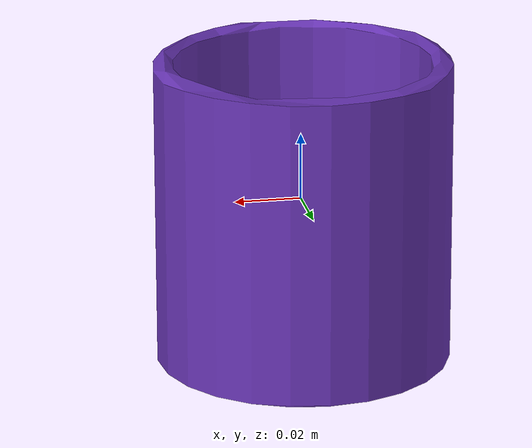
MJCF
<mujoco model="top_watertight_tiny">
  <default>
    <default group="2" type="mesh" contype="0" conaffinity="0">
      <geom group="2" type="mesh" contype="0" conaffinity="0"/>
    </default>
    <default group="3" type="mesh">
      <geom group="3" type="mesh"/>
    </default>
  </default>
  <asset>
    <mesh file="top_watertight_tiny.obj"/>
    <mesh file="top_watertight_tiny_collision_0.obj"/>
    <mesh file="top_watertight_tiny_collision_1.obj"/>
    <mesh file="top_watertight_tiny_collision_2.obj"/>
    <mesh file="top_watertight_tiny_collision_3.obj"/>
    <mesh file="top_watertight_tiny_collision_4.obj"/>
    <mesh file="top_watertight_tiny_collision_5.obj"/>
    <mesh file="top_watertight_tiny_collision_6.obj"/>
    <mesh file="top_watertight_tiny_collision_7.obj"/>
    <mesh file="top_watertight_tiny_collision_8.obj"/>
    <mesh file="top_watertight_tiny_collision_9.obj"/>
    <mesh file="top_watertight_tiny_collision_10.obj"/>
    <mesh file="top_watertight_tiny_collision_11.obj"/>
    <mesh file="top_watertight_tiny_collision_12.obj"/>
    <mesh file="top_watertight_tiny_collision_13.obj"/>
    <mesh file="top_watertight_tiny_collision_14.obj"/>
    <mesh file="top_watertight_tiny_collision_15.obj"/>
    <mesh file="top_watertight_tiny_collision_16.obj"/>
    <mesh file="top_watertight_tiny_collision_17.obj"/>
    <mesh file="top_watertight_tiny_collision_18.obj"/>
    <mesh file="top_watertight_tiny_collision_19.obj"/>
    <mesh file="top_watertight_tiny_collision_20.obj"/>
    <mesh file="top_watertight_tiny_collision_21.obj"/>
    <mesh file="top_watertight_tiny_collision_22.obj"/>
    <mesh file="top_watertight_tiny_collision_23.obj"/>
    <mesh file="top_watertight_tiny_collision_24.obj"/>
    <mesh file="top_watertight_tiny_collision_25.obj"/>
    <mesh file="top_watertight_tiny_collision_26.obj"/>
    <mesh file="top_watertight_tiny_collision_27.obj"/>
    <mesh file="top_watertight_tiny_collision_28.obj"/>
    <mesh file="top_watertight_tiny_collision_29.obj"/>
    <mesh file="top_watertight_tiny_collision_30.obj"/>
    <mesh file="top_watertight_tiny_collision_31.obj"/>
    <mesh file="top_watertight_tiny_collision_32.obj"/>
    <mesh file="top_watertight_tiny_collision_33.obj"/>
    <mesh file="top_watertight_tiny_collision_34.obj"/>
    <mesh file="top_watertight_tiny_collision_35.obj"/>
    <mesh file="top_watertight_tiny_collision_36.obj"/>
    <mesh file="top_watertight_tiny_collision_37.obj"/>
    <mesh file="top_watertight_tiny_collision_38.obj"/>
    <mesh file="top_watertight_tiny_collision_39.obj"/>
    <mesh file="top_watertight_tiny_collision_40.obj"/>
    <mesh file="top_watertight_tiny_collision_41.obj"/>
    <mesh file="top_watertight_tiny_collision_42.obj"/>
    <mesh file="top_watertight_tiny_collision_43.obj"/>
    <mesh file="top_watertight_tiny_collision_44.obj"/>
    <mesh file="top_watertight_tiny_collision_45.obj"/>
    <mesh file="top_watertight_tiny_collision_46.obj"/>
    <mesh file="top_watertight_tiny_collision_47.obj"/>
    <mesh file="top_watertight_tiny_collision_48.obj"/>
    <mesh file="top_watertight_tiny_collision_49.obj"/>
    <mesh file="top_watertight_tiny_collision_50.obj"/>
    <mesh file="top_watertight_tiny_collision_51.obj"/>
    <mesh file="top_watertight_tiny_collision_52.obj"/>
    <mesh file="top_watertight_tiny_collision_53.obj"/>
    <mesh file="top_watertight_tiny_collision_54.obj"/>
    <mesh file="top_watertight_tiny_collision_55.obj"/>
    <mesh file="top_watertight_tiny_collision_56.obj"/>
    <mesh file="top_watertight_tiny_collision_57.obj"/>
    <mesh file="top_watertight_tiny_collision_58.obj"/>
    <mesh file="top_watertight_tiny_collision_59.obj"/>
    <mesh file="top_watertight_tiny_collision_60.obj"/>
    <mesh file="top_watertight_tiny_collision_61.obj"/>
    <mesh file="top_watertight_tiny_collision_62.obj"/>
    <mesh file="top_watertight_tiny_collision_63.obj"/>
    <mesh file="top_watertight_tiny_collision_64.obj"/>
    <mesh file="top_watertight_tiny_collision_65.obj"/>
    <mesh file="top_watertight_tiny_collision_66.obj"/>
    <mesh file="top_watertight_tiny_collision_67.obj"/>
    <mesh file="top_watertight_tiny_collision_68.obj"/>
    <mesh file="top_watertight_tiny_collision_69.obj"/>
    <mesh file="top_watertight_tiny_collision_70.obj"/>
    <mesh file="top_watertight_tiny_collision_71.obj"/>
    <mesh file="top_watertight_tiny_collision_72.obj"/>
    <mesh file="top_watertight_tiny_collision_73.obj"/>
    <mesh file="top_watertight_tiny_collision_74.obj"/>
    <mesh file="top_watertight_tiny_collision_75.obj"/>
    <mesh file="top_watertight_tiny_collision_76.obj"/>
    <mesh file="top_watertight_tiny_collision_77.obj"/>
    <mesh file="top_watertight_tiny_collision_78.obj"/>
    <mesh file="top_watertight_tiny_collision_79.obj"/>
    <mesh file="top_watertight_tiny_collision_80.obj"/>
    <mesh file="top_watertight_tiny_collision_81.obj"/>
    <mesh file="top_watertight_tiny_collision_82.obj"/>
    <mesh file="top_watertight_tiny_collision_83.obj"/>
    <mesh file="top_watertight_tiny_collision_84.obj"/>
    <mesh file="top_watertight_tiny_collision_85.obj"/>
    <mesh file="top_watertight_tiny_collision_86.obj"/>
    <mesh file="top_watertight_tiny_collision_87.obj"/>
    <mesh file="top_watertight_tiny_collision_88.obj"/>
    <mesh file="top_watertight_tiny_collision_89.obj"/>
    <mesh file="top_watertight_tiny_collision_90.obj"/>
    <mesh file="top_watertight_tiny_collision_91.obj"/>
    <mesh file="top_watertight_tiny_collision_92.obj"/>
    <mesh file="top_watertight_tiny_collision_93.obj"/>
    <mesh file="top_watertight_tiny_collision_94.obj"/>
    <mesh file="top_watertight_tiny_collision_95.obj"/>
    <mesh file="top_watertight_tiny_collision_96.obj"/>
    <mesh file="top_watertight_tiny_collision_97.obj"/>
    <mesh file="top_watertight_tiny_collision_98.obj"/>
    <mesh file="top_watertight_tiny_collision_99.obj"/>
    <mesh file="top_watertight_tiny_collision_100.obj"/>
    <mesh file="top_watertight_tiny_collision_101.obj"/>
    <mesh file="top_watertight_tiny_collision_102.obj"/>
    <mesh file="top_watertight_tiny_collision_103.obj"/>
    <mesh file="top_watertight_tiny_collision_104.obj"/>
    <mesh file="top_watertight_tiny_collision_105.obj"/>
    <mesh file="top_watertight_tiny_collision_106.obj"/>
    <mesh file="top_watertight_tiny_collision_107.obj"/>
    <mesh file="top_watertight_tiny_collision_108.obj"/>
    <mesh file="top_watertight_tiny_collision_109.obj"/>
    <mesh file="top_watertight_tiny_collision_110.obj"/>
    <mesh file="top_watertight_tiny_collision_111.obj"/>
    <mesh file="top_watertight_tiny_collision_112.obj"/>
    <mesh file="top_watertight_tiny_collision_113.obj"/>
    <mesh file="top_watertight_tiny_collision_114.obj"/>
    <mesh file="top_watertight_tiny_collision_115.obj"/>
    <mesh file="top_watertight_tiny_collision_116.obj"/>
    <mesh file="top_watertight_tiny_collision_117.obj"/>
    <mesh file="top_watertight_tiny_collision_118.obj"/>
    <mesh file="top_watertight_tiny_collision_119.obj"/>
    <mesh file="top_watertight_tiny_collision_120.obj"/>
  </asset>
  <worldbody>
    <body name="top_watertight_tiny">
      <freejoint/>
      <geom mesh="top_watertight_tiny" group="2" type="mesh" rgba="0.4 0.2 0.7 1" contype="0" conaffinity="0"/>
      <geom mesh="top_watertight_tiny_collision_0" rgba="0.4490990782536012 0.24460262758673013 0.04683654662629022 1" group="3" type="mesh"/>
      <geom mesh="top_watertight_tiny_collision_1" rgba="0.5599859420718888 0.6758748700977271 0.15544428380469655 1" group="3" type="mesh"/>
      <geom mesh="top_watertight_tiny_collision_2" rgba="0.7129459273746039 0.8729791469214472 0.9545844155881272 1" group="3" type="mesh"/>
      <geom mesh="top_watertight_tiny_collision_3" rgba="0.5191764600563122 0.06441206134734545 0.3671252044231731 1" group="3" type="mesh"/>
      <geom mesh="top_watertight_tiny_collision_4" rgba="0.3210344879338999 0.9539204172810082 0.14422990224602406 1" group="3" type="mesh"/>
      <geom mesh="top_watertight_tiny_collision_5" rgba="0.636595780511611 0.3759725430192782 0.3667528424146236 1" group="3" type="mesh"/>
      <geom mesh="top_watertight_tiny_collision_6" rgba="0.579764912573478 0.30946283480273307 0.23745374567479627 1" group="3" type="mesh"/>
      <geom mesh="top_watertight_tiny_collision_7" rgba="0.6550287724335618 0.12070492325264248 0.334848336915737 1" group="3" type="mesh"/>
      <geom mesh="top_watertight_tiny_collision_8" rgba="0.26891021990147934 0.4005121731803195 0.06574317797935303 1" group="3" type="mesh"/>
      <geom mesh="top_watertight_tiny_collision_9" rgba="0.8159494767528606 0.5352462528523569 0.5605220658428819 1" group="3" type="mesh"/>
      <geom mesh="top_watertight_tiny_collision_10" rgba="0.15416919359273884 0.778661410907151 0.4433331478676038 1" group="3" type="mesh"/>
      <geom mesh="top_watertight_tiny_collision_11" rgba="0.1399896553701564 0.011560491662929051 0.7740132577912806 1" group="3" type="mesh"/>
      <geom mesh="top_watertight_tiny_collision_12" rgba="0.5302535206763827 0.006914939213301663 0.9175609128522053 1" group="3" type="mesh"/>
      <geom mesh="top_watertight_tiny_collision_13" rgba="0.1593885614360756 0.0891130767295818 0.8307501813741608 1" group="3" type="mesh"/>
      <geom mesh="top_watertight_tiny_collision_14" rgba="0.5527968024209661 0.6435770556732072 0.059678221220655914 1" group="3" type="mesh"/>
      <geom mesh="top_watertight_tiny_collision_15" rgba="0.1506074401326848 0.5684909109283289 0.6647840674102448 1" group="3" type="mesh"/>
      <geom mesh="top_watertight_tiny_collision_16" rgba="0.6051282563757727 0.9229306384439185 0.694318498568247 1" group="3" type="mesh"/>
      <geom mesh="top_watertight_tiny_collision_17" rgba="0.963984351803506 0.15232961236932796 0.9080360688445224 1" group="3" type="mesh"/>
      <geom mesh="top_watertight_tiny_collision_18" rgba="0.08757775834580617 0.8682508140867546 0.3355509809199252 1" group="3" type="mesh"/>
      <geom mesh="top_watertight_tiny_collision_19" rgba="0.8978991641175263 0.2730209721400859 0.6919830315611099 1" group="3" type="mesh"/>
      <geom mesh="top_watertight_tiny_collision_20" rgba="0.24141150830999403 0.9559319526933544 0.09979897621833111 1" group="3" type="mesh"/>
      <geom mesh="top_watertight_tiny_collision_21" rgba="0.20574811299300055 0.12698374366240883 0.669465284097305 1" group="3" type="mesh"/>
      <geom mesh="top_watertight_tiny_collision_22" rgba="0.025592652035969166 0.37677230626853697 0.30486915860845887 1" group="3" type="mesh"/>
      <geom mesh="top_watertight_tiny_collision_23" rgba="0.01773035139800727 0.12237397768872615 0.4301007697920831 1" group="3" type="mesh"/>
      <geom mesh="top_watertight_tiny_collision_24" rgba="0.9481079928203233 0.465395568185622 0.9497097465914248 1" group="3" type="mesh"/>
      <geom mesh="top_watertight_tiny_collision_25" rgba="0.4579150566466318 0.5022704932924098 0.8876017062304992 1" group="3" type="mesh"/>
      <geom mesh="top_watertight_tiny_collision_26" rgba="0.5943370878788736 0.20054879503557632 0.8082803865833864 1" group="3" type="mesh"/>
      <geom mesh="top_watertight_tiny_collision_27" rgba="0.40803714773770383 0.4896164300774202 0.6529982629205168 1" group="3" type="mesh"/>
      <geom mesh="top_watertight_tiny_collision_28" rgba="0.28538731006272355 0.8630346681144097 0.100778419478318 1" group="3" type="mesh"/>
      <geom mesh="top_watertight_tiny_collision_29" rgba="0.4195276251382778 0.9034193848387176 0.8153360299089405 1" group="3" type="mesh"/>
      <geom mesh="top_watertight_tiny_collision_30" rgba="0.5150972987599074 0.14715952147817934 0.24172273766339236 1" group="3" type="mesh"/>
      <geom mesh="top_watertight_tiny_collision_31" rgba="0.05742978506850116 0.4122610464441586 0.09900505766505541 1" group="3" type="mesh"/>
      <geom mesh="top_watertight_tiny_collision_32" rgba="0.8737103764157996 0.27767863385344393 0.5497869149293453 1" group="3" type="mesh"/>
      <geom mesh="top_watertight_tiny_collision_33" rgba="0.013266971501951219 0.5349888116074802 0.7341682873851495 1" group="3" type="mesh"/>
      <geom mesh="top_watertight_tiny_collision_34" rgba="0.46065924702563144 0.9954584833700789 0.9488645294689709 1" group="3" type="mesh"/>
      <geom mesh="top_watertight_tiny_collision_35" rgba="0.48515183840816556 0.1791209883432907 0.6592212572325533 1" group="3" type="mesh"/>
      <geom mesh="top_watertight_tiny_collision_36" rgba="0.8815892266695957 0.4855898867997278 0.6712598521638159 1" group="3" type="mesh"/>
      <geom mesh="top_watertight_tiny_collision_37" rgba="0.648050910463799 0.49930794829464875 0.7979693160410473 1" group="3" type="mesh"/>
      <geom mesh="top_watertight_tiny_collision_38" rgba="0.9724153166195685 0.31199227871515145 0.16583426370550147 1" group="3" type="mesh"/>
      <geom mesh="top_watertight_tiny_collision_39" rgba="0.5234130676744236 0.034962900011635045 0.24541453490505016 1" group="3" type="mesh"/>
      <geom mesh="top_watertight_tiny_collision_40" rgba="0.45422255139606327 0.5570589289279649 0.20749321753234273 1" group="3" type="mesh"/>
      <geom mesh="top_watertight_tiny_collision_41" rgba="0.5414675917705537 0.5050640102972325 0.09502024292660582 1" group="3" type="mesh"/>
      <geom mesh="top_watertight_tiny_collision_42" rgba="0.31831077734709434 0.48538300485551555 0.8524935211140539 1" group="3" type="mesh"/>
      <geom mesh="top_watertight_tiny_collision_43" rgba="0.18001528102589304 0.6961073101210307 0.09717019012440209 1" group="3" type="mesh"/>
      <geom mesh="top_watertight_tiny_collision_44" rgba="0.5019646664561336 0.4137783569350303 0.5999557801203321 1" group="3" type="mesh"/>
      <geom mesh="top_watertight_tiny_collision_45" rgba="0.7683676913139339 0.022681157426892473 0.1939679653027706 1" group="3" type="mesh"/>
      <geom mesh="top_watertight_tiny_collision_46" rgba="0.6225032298871009 0.4979437205704641 0.4912486838656389 1" group="3" type="mesh"/>
      <geom mesh="top_watertight_tiny_collision_47" rgba="0.5048586723118457 0.424035951867774 0.7060222906831328 1" group="3" type="mesh"/>
      <geom mesh="top_watertight_tiny_collision_48" rgba="0.581116133496052 0.19908076559286392 0.8137276692633676 1" group="3" type="mesh"/>
      <geom mesh="top_watertight_tiny_collision_49" rgba="0.9695723429723815 0.11191101634407818 0.23152111024754118 1" group="3" type="mesh"/>
      <geom mesh="top_watertight_tiny_collision_50" rgba="0.9280047568735673 0.6920454675510394 0.36619763286228646 1" group="3" type="mesh"/>
      <geom mesh="top_watertight_tiny_collision_51" rgba="0.9896855273198076 0.9000816160347636 0.9334033467188961 1" group="3" type="mesh"/>
      <geom mesh="top_watertight_tiny_collision_52" rgba="0.4964926700116039 0.4239747714541756 0.009872215047521005 1" group="3" type="mesh"/>
      <geom mesh="top_watertight_tiny_collision_53" rgba="0.5200871948201844 0.5216611194167295 0.5842166558940296 1" group="3" type="mesh"/>
      <geom mesh="top_watertight_tiny_collision_54" rgba="0.46164524996130096 0.7131706229750555 0.16061753449863192 1" group="3" type="mesh"/>
      <geom mesh="top_watertight_tiny_collision_55" rgba="0.5780183773644252 0.027349175341992327 0.54915755984058 1" group="3" type="mesh"/>
      <geom mesh="top_watertight_tiny_collision_56" rgba="0.40008314604938855 0.317269032183913 0.7086874189139967 1" group="3" type="mesh"/>
      <geom mesh="top_watertight_tiny_collision_57" rgba="0.8042204525715211 0.21695874137166438 0.900062079775758 1" group="3" type="mesh"/>
      <geom mesh="top_watertight_tiny_collision_58" rgba="0.45505786418756056 0.7826616700176003 0.41043212108179705 1" group="3" type="mesh"/>
      <geom mesh="top_watertight_tiny_collision_59" rgba="0.844491807684964 0.02415094014212127 0.6685597795063856 1" group="3" type="mesh"/>
      <geom mesh="top_watertight_tiny_collision_60" rgba="0.11950244879188499 0.7774853682190936 0.4348387401025888 1" group="3" type="mesh"/>
      <geom mesh="top_watertight_tiny_collision_61" rgba="0.294772273802014 0.09402514603733236 0.5133991001732915 1" group="3" type="mesh"/>
      <geom mesh="top_watertight_tiny_collision_62" rgba="0.974301749694422 0.6679491903646412 0.40509670298829004 1" group="3" type="mesh"/>
      <geom mesh="top_watertight_tiny_collision_63" rgba="0.12338693787713795 0.39226100558511734 0.42146837739439313 1" group="3" type="mesh"/>
      <geom mesh="top_watertight_tiny_collision_64" rgba="0.8819279884520171 0.08034421786942103 0.02996208144058299 1" group="3" type="mesh"/>
      <geom mesh="top_watertight_tiny_collision_65" rgba="0.23585801397835182 0.4232842770511289 0.5324948863896208 1" group="3" type="mesh"/>
      <geom mesh="top_watertight_tiny_collision_66" rgba="0.024334417749742654 0.43226161040964217 0.8201572996072543 1" group="3" type="mesh"/>
      <geom mesh="top_watertight_tiny_collision_67" rgba="0.6272010913529749 0.8509825775984317 0.22258445685734396 1" group="3" type="mesh"/>
      <geom mesh="top_watertight_tiny_collision_68" rgba="0.5458063270769109 0.5521234903313704 0.4337052142766733 1" group="3" type="mesh"/>
      <geom mesh="top_watertight_tiny_collision_69" rgba="0.2876969519719519 0.9938140801833704 0.3555276185755597 1" group="3" type="mesh"/>
      <geom mesh="top_watertight_tiny_collision_70" rgba="0.6675271412236605 0.5352421790965298 0.6329632331120579 1" group="3" type="mesh"/>
      <geom mesh="top_watertight_tiny_collision_71" rgba="0.5978401106406844 0.07063033590860102 0.7818983028321286 1" group="3" type="mesh"/>
      <geom mesh="top_watertight_tiny_collision_72" rgba="0.5605030322032535 0.2835141163018202 0.08962679530273121 1" group="3" type="mesh"/>
      <geom mesh="top_watertight_tiny_collision_73" rgba="0.5656521973767131 0.6133720133408439 0.5426646500938004 1" group="3" type="mesh"/>
      <geom mesh="top_watertight_tiny_collision_74" rgba="0.05386769444922157 0.27383522737471 0.41137782939159717 1" group="3" type="mesh"/>
      <geom mesh="top_watertight_tiny_collision_75" rgba="0.8914797542652121 0.9323132782237773 0.8843765798143155 1" group="3" type="mesh"/>
      <geom mesh="top_watertight_tiny_collision_76" rgba="0.5546021226302594 0.7409123290593593 0.2811602892568045 1" group="3" type="mesh"/>
      <geom mesh="top_watertight_tiny_collision_77" rgba="0.6619710329688238 0.3570599124750543 0.7532926370230373 1" group="3" type="mesh"/>
      <geom mesh="top_watertight_tiny_collision_78" rgba="0.8269891414424492 0.6620880755464843 0.4937168411701329 1" group="3" type="mesh"/>
      <geom mesh="top_watertight_tiny_collision_79" rgba="0.30868536408875336 0.8452453809007736 0.7260969592552957 1" group="3" type="mesh"/>
      <geom mesh="top_watertight_tiny_collision_80" rgba="0.2688855443948521 0.6830022298041429 0.8031742919543499 1" group="3" type="mesh"/>
      <geom mesh="top_watertight_tiny_collision_81" rgba="0.9457419618632599 0.4014409682105632 0.6444196821204282 1" group="3" type="mesh"/>
      <geom mesh="top_watertight_tiny_collision_82" rgba="0.3226072057738174 0.7849377515735487 0.16030568380783505 1" group="3" type="mesh"/>
      <geom mesh="top_watertight_tiny_collision_83" rgba="0.3089023310849077 0.3608470364919454 0.06408928207039333 1" group="3" type="mesh"/>
      <geom mesh="top_watertight_tiny_collision_84" rgba="0.005709052842321927 0.3127126596934453 0.6786446536657758 1" group="3" type="mesh"/>
      <geom mesh="top_watertight_tiny_collision_85" rgba="0.7417196977197618 0.29759236051677707 0.298533770498454 1" group="3" type="mesh"/>
      <geom mesh="top_watertight_tiny_collision_86" rgba="0.7273420873183841 0.5385127154259726 0.9944315693697598 1" group="3" type="mesh"/>
      <geom mesh="top_watertight_tiny_collision_87" rgba="0.5065862314928836 0.47799053689487037 0.4742055318847279 1" group="3" type="mesh"/>
      <geom mesh="top_watertight_tiny_collision_88" rgba="0.9532330689387288 0.8140354973635422 0.2920039733693276 1" group="3" type="mesh"/>
      <geom mesh="top_watertight_tiny_collision_89" rgba="0.4475049679097487 0.06591370855683765 0.3435520994899205 1" group="3" type="mesh"/>
      <geom mesh="top_watertight_tiny_collision_90" rgba="0.7427203138404873 0.8766223166059085 0.11952554905922419 1" group="3" type="mesh"/>
      <geom mesh="top_watertight_tiny_collision_91" rgba="0.21129221805666354 0.4837089385092299 0.026762485446969797 1" group="3" type="mesh"/>
      <geom mesh="top_watertight_tiny_collision_92" rgba="0.7419144972479967 0.7365465502231395 0.9926266843091964 1" group="3" type="mesh"/>
      <geom mesh="top_watertight_tiny_collision_93" rgba="0.6594488205195744 0.6277695882874835 0.7261864778148651 1" group="3" type="mesh"/>
      <geom mesh="top_watertight_tiny_collision_94" rgba="0.1505663470083357 0.4568773304126843 0.7612852068279771 1" group="3" type="mesh"/>
      <geom mesh="top_watertight_tiny_collision_95" rgba="0.8397535112619686 0.22878254092708317 0.6309123351050545 1" group="3" type="mesh"/>
      <geom mesh="top_watertight_tiny_collision_96" rgba="0.7737862038429522 0.2180792113195713 0.9867348216306269 1" group="3" type="mesh"/>
      <geom mesh="top_watertight_tiny_collision_97" rgba="0.3289650107661949 0.27600597880266686 0.3710219338938032 1" group="3" type="mesh"/>
      <geom mesh="top_watertight_tiny_collision_98" rgba="0.5217863749996156 0.4410005771150026 0.34863226699386085 1" group="3" type="mesh"/>
      <geom mesh="top_watertight_tiny_collision_99" rgba="0.9472516464091328 0.5760928688625208 0.2658076107143189 1" group="3" type="mesh"/>
      <geom mesh="top_watertight_tiny_collision_100" rgba="0.8893530614878479 0.5821172239270709 0.06219789269631926 1" group="3" type="mesh"/>
      <geom mesh="top_watertight_tiny_collision_101" rgba="0.9602431766823524 0.1786311136261648 0.9918222809825386 1" group="3" type="mesh"/>
      <geom mesh="top_watertight_tiny_collision_102" rgba="0.7183219772185723 0.030621728110521884 0.7635502003756168 1" group="3" type="mesh"/>
      <geom mesh="top_watertight_tiny_collision_103" rgba="0.32804650750161846 0.24392407372832348 0.9712834417511257 1" group="3" type="mesh"/>
      <geom mesh="top_watertight_tiny_collision_104" rgba="0.9641788774110022 0.05266556773362996 0.06655047777471568 1" group="3" type="mesh"/>
      <geom mesh="top_watertight_tiny_collision_105" rgba="0.7668333039454692 0.48221307064496055 0.7368822327426947 1" group="3" type="mesh"/>
      <geom mesh="top_watertight_tiny_collision_106" rgba="0.2986498796035407 0.6775065995648075 0.8940146319830586 1" group="3" type="mesh"/>
      <geom mesh="top_watertight_tiny_collision_107" rgba="0.17095157453974819 0.9061663427464345 0.039232092825903675 1" group="3" type="mesh"/>
      <geom mesh="top_watertight_tiny_collision_108" rgba="0.36571907282336324 0.30784899865538395 0.9985472523410367 1" group="3" type="mesh"/>
      <geom mesh="top_watertight_tiny_collision_109" rgba="0.6073908825930958 0.5988655339101944 0.7195630373557429 1" group="3" type="mesh"/>
      <geom mesh="top_watertight_tiny_collision_110" rgba="0.2857190804640416 0.03813894985199462 0.25271675965126283 1" group="3" type="mesh"/>
      <geom mesh="top_watertight_tiny_collision_111" rgba="0.9628924289437526 0.671067353902139 0.3509570466364236 1" group="3" type="mesh"/>
      <geom mesh="top_watertight_tiny_collision_112" rgba="0.16508239712450146 0.29427222250035434 0.8681205173851282 1" group="3" type="mesh"/>
      <geom mesh="top_watertight_tiny_collision_113" rgba="0.9887577969419139 0.3838678239343992 0.6749154443291097 1" group="3" type="mesh"/>
      <geom mesh="top_watertight_tiny_collision_114" rgba="0.4077921544917672 0.20038804750817296 0.3962226430986562 1" group="3" type="mesh"/>
      <geom mesh="top_watertight_tiny_collision_115" rgba="0.1581438298570247 0.5475914449326416 0.14451948808117965 1" group="3" type="mesh"/>
      <geom mesh="top_watertight_tiny_collision_116" rgba="0.04348646909402165 0.6924260642627861 0.17746846158127527 1" group="3" type="mesh"/>
      <geom mesh="top_watertight_tiny_collision_117" rgba="0.841526859662151 0.7139920323142538 0.15437385478738497 1" group="3" type="mesh"/>
      <geom mesh="top_watertight_tiny_collision_118" rgba="0.6770976536684592 0.7372585447462557 0.6156460134522064 1" group="3" type="mesh"/>
      <geom mesh="top_watertight_tiny_collision_119" rgba="0.1548258641004815 0.8816320878821962 0.5143264666378549 1" group="3" type="mesh"/>
      <geom mesh="top_watertight_tiny_collision_120" rgba="0.2137719291323097 0.8368587918777322 0.37081836993561323 1" group="3" type="mesh"/>
    </body>
  </worldbody>
</mujoco>
